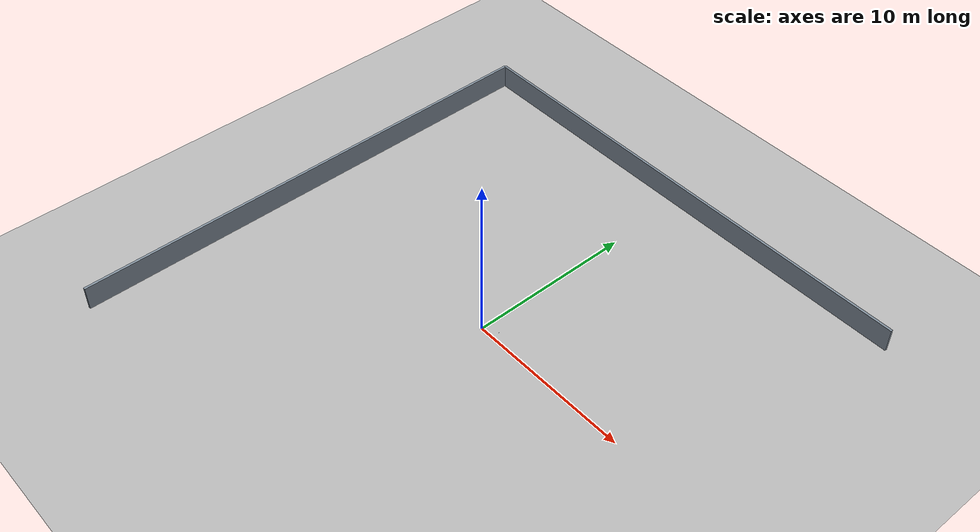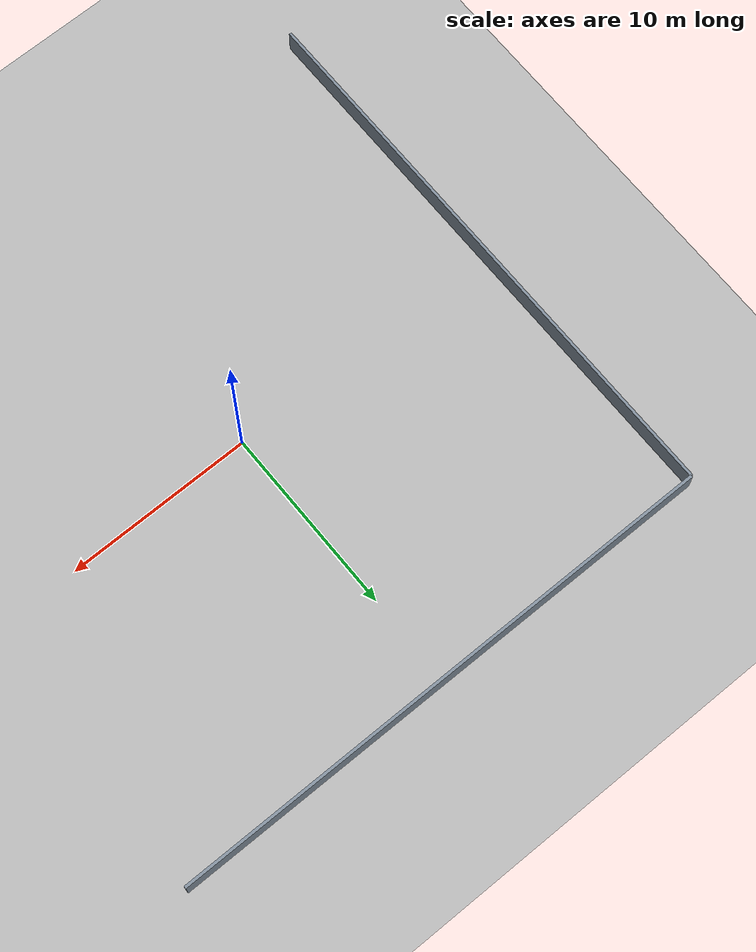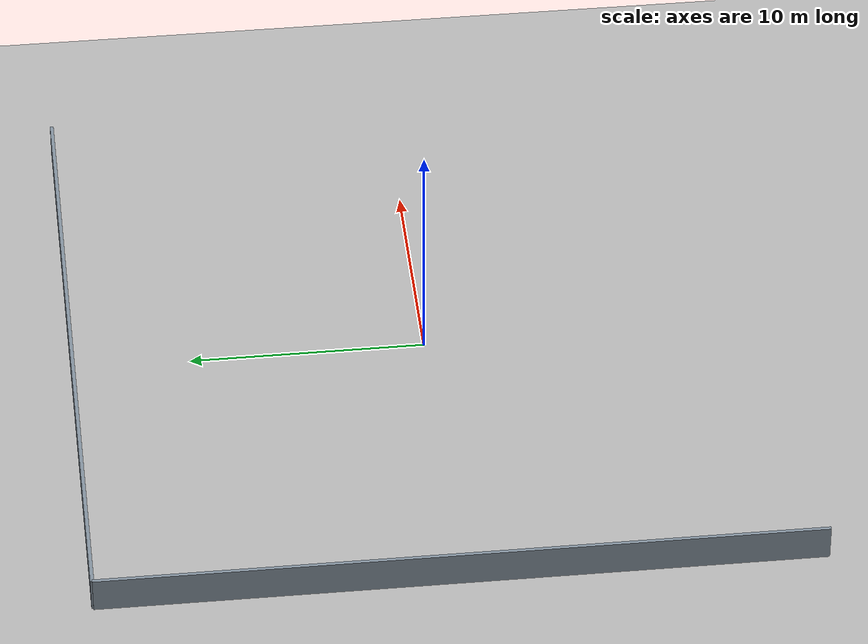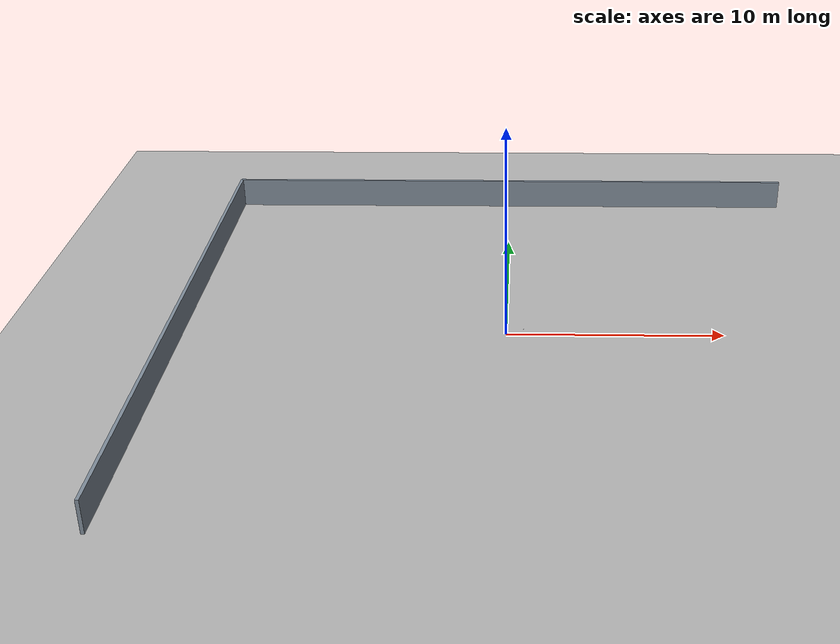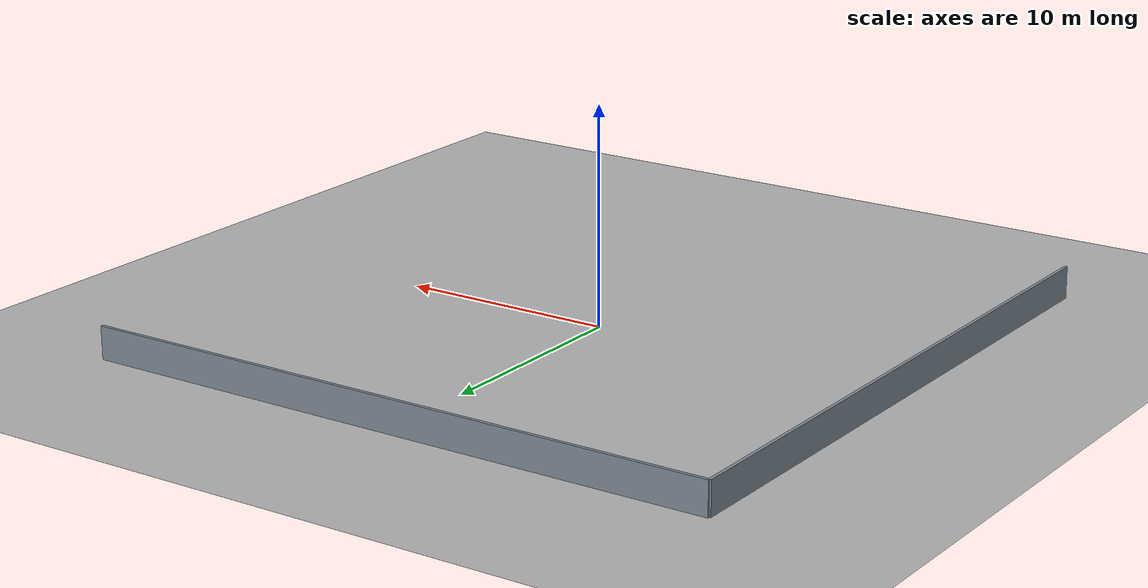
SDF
<sdf version="1.8">
 <world name="aruco_arena">
  <model name="aruco_floor_1">
   <static>true</static>
   <pose>0.8 0.5 0.001 0 0 0</pose>
   <link name="tag">
    <visual name="white_margin">
     <geometry><plane><normal>0 0 1</normal><size>0.0266666667 0.0266666667</size></plane></geometry>
     <cast_shadows>false</cast_shadows>
     <material><ambient>1 1 1 1</ambient><diffuse>1 1 1 1</diffuse><specular>0 0 0 1</specular></material>
    </visual>
    <visual name="black_0_0">
     <pose>-0.0083333333 0.0083333333 1e-05 0 0 0</pose>
     <geometry><plane><normal>0 0 1</normal><size>0.0033333333 0.0033333333</size></plane></geometry>
     <cast_shadows>false</cast_shadows>
     <material><ambient>0 0 0 1</ambient><diffuse>0 0 0 1</diffuse><specular>0 0 0 1</specular></material>
    </visual>
    <visual name="black_0_1">
     <pose>-0.0050000000 0.0083333333 1e-05 0 0 0</pose>
     <geometry><plane><normal>0 0 1</normal><size>0.0033333333 0.0033333333</size></plane></geometry>
     <cast_shadows>false</cast_shadows>
     <material><ambient>0 0 0 1</ambient><diffuse>0 0 0 1</diffuse><specular>0 0 0 1</specular></material>
    </visual>
    <visual name="black_0_2">
     <pose>-0.0016666667 0.0083333333 1e-05 0 0 0</pose>
     <geometry><plane><normal>0 0 1</normal><size>0.0033333333 0.0033333333</size></plane></geometry>
     <cast_shadows>false</cast_shadows>
     <material><ambient>0 0 0 1</ambient><diffuse>0 0 0 1</diffuse><specular>0 0 0 1</specular></material>
    </visual>
    <visual name="black_0_3">
     <pose>0.0016666667 0.0083333333 1e-05 0 0 0</pose>
     <geometry><plane><normal>0 0 1</normal><size>0.0033333333 0.0033333333</size></plane></geometry>
     <cast_shadows>false</cast_shadows>
     <material><ambient>0 0 0 1</ambient><diffuse>0 0 0 1</diffuse><specular>0 0 0 1</specular></material>
    </visual>
    <visual name="black_0_4">
     <pose>0.0050000000 0.0083333333 1e-05 0 0 0</pose>
     <geometry><plane><normal>0 0 1</normal><size>0.0033333333 0.0033333333</size></plane></geometry>
     <cast_shadows>false</cast_shadows>
     <material><ambient>0 0 0 1</ambient><diffuse>0 0 0 1</diffuse><specular>0 0 0 1</specular></material>
    </visual>
    <visual name="black_0_5">
     <pose>0.0083333333 0.0083333333 1e-05 0 0 0</pose>
     <geometry><plane><normal>0 0 1</normal><size>0.0033333333 0.0033333333</size></plane></geometry>
     <cast_shadows>false</cast_shadows>
     <material><ambient>0 0 0 1</ambient><diffuse>0 0 0 1</diffuse><specular>0 0 0 1</specular></material>
    </visual>
    <visual name="black_1_0">
     <pose>-0.0083333333 0.0050000000 1e-05 0 0 0</pose>
     <geometry><plane><normal>0 0 1</normal><size>0.0033333333 0.0033333333</size></plane></geometry>
     <cast_shadows>false</cast_shadows>
     <material><ambient>0 0 0 1</ambient><diffuse>0 0 0 1</diffuse><specular>0 0 0 1</specular></material>
    </visual>
    <visual name="black_1_1">
     <pose>-0.0050000000 0.0050000000 1e-05 0 0 0</pose>
     <geometry><plane><normal>0 0 1</normal><size>0.0033333333 0.0033333333</size></plane></geometry>
     <cast_shadows>false</cast_shadows>
     <material><ambient>0 0 0 1</ambient><diffuse>0 0 0 1</diffuse><specular>0 0 0 1</specular></material>
    </visual>
    <visual name="black_1_2">
     <pose>-0.0016666667 0.0050000000 1e-05 0 0 0</pose>
     <geometry><plane><normal>0 0 1</normal><size>0.0033333333 0.0033333333</size></plane></geometry>
     <cast_shadows>false</cast_shadows>
     <material><ambient>0 0 0 1</ambient><diffuse>0 0 0 1</diffuse><specular>0 0 0 1</specular></material>
    </visual>
    <visual name="black_1_3">
     <pose>0.0016666667 0.0050000000 1e-05 0 0 0</pose>
     <geometry><plane><normal>0 0 1</normal><size>0.0033333333 0.0033333333</size></plane></geometry>
     <cast_shadows>false</cast_shadows>
     <material><ambient>0 0 0 1</ambient><diffuse>0 0 0 1</diffuse><specular>0 0 0 1</specular></material>
    </visual>
    <visual name="black_1_4">
     <pose>0.0050000000 0.0050000000 1e-05 0 0 0</pose>
     <geometry><plane><normal>0 0 1</normal><size>0.0033333333 0.0033333333</size></plane></geometry>
     <cast_shadows>false</cast_shadows>
     <material><ambient>0 0 0 1</ambient><diffuse>0 0 0 1</diffuse><specular>0 0 0 1</specular></material>
    </visual>
    <visual name="black_1_5">
     <pose>0.0083333333 0.0050000000 1e-05 0 0 0</pose>
     <geometry><plane><normal>0 0 1</normal><size>0.0033333333 0.0033333333</size></plane></geometry>
     <cast_shadows>false</cast_shadows>
     <material><ambient>0 0 0 1</ambient><diffuse>0 0 0 1</diffuse><specular>0 0 0 1</specular></material>
    </visual>
    <visual name="black_2_0">
     <pose>-0.0083333333 0.0016666667 1e-05 0 0 0</pose>
     <geometry><plane><normal>0 0 1</normal><size>0.0033333333 0.0033333333</size></plane></geometry>
     <cast_shadows>false</cast_shadows>
     <material><ambient>0 0 0 1</ambient><diffuse>0 0 0 1</diffuse><specular>0 0 0 1</specular></material>
    </visual>
    <visual name="black_2_5">
     <pose>0.0083333333 0.0016666667 1e-05 0 0 0</pose>
     <geometry><plane><normal>0 0 1</normal><size>0.0033333333 0.0033333333</size></plane></geometry>
     <cast_shadows>false</cast_shadows>
     <material><ambient>0 0 0 1</ambient><diffuse>0 0 0 1</diffuse><specular>0 0 0 1</specular></material>
    </visual>
    <visual name="black_3_0">
     <pose>-0.0083333333 -0.0016666667 1e-05 0 0 0</pose>
     <geometry><plane><normal>0 0 1</normal><size>0.0033333333 0.0033333333</size></plane></geometry>
     <cast_shadows>false</cast_shadows>
     <material><ambient>0 0 0 1</ambient><diffuse>0 0 0 1</diffuse><specular>0 0 0 1</specular></material>
    </visual>
    <visual name="black_3_2">
     <pose>-0.0016666667 -0.0016666667 1e-05 0 0 0</pose>
     <geometry><plane><normal>0 0 1</normal><size>0.0033333333 0.0033333333</size></plane></geometry>
     <cast_shadows>false</cast_shadows>
     <material><ambient>0 0 0 1</ambient><diffuse>0 0 0 1</diffuse><specular>0 0 0 1</specular></material>
    </visual>
    <visual name="black_3_3">
     <pose>0.0016666667 -0.0016666667 1e-05 0 0 0</pose>
     <geometry><plane><normal>0 0 1</normal><size>0.0033333333 0.0033333333</size></plane></geometry>
     <cast_shadows>false</cast_shadows>
     <material><ambient>0 0 0 1</ambient><diffuse>0 0 0 1</diffuse><specular>0 0 0 1</specular></material>
    </visual>
    <visual name="black_3_5">
     <pose>0.0083333333 -0.0016666667 1e-05 0 0 0</pose>
     <geometry><plane><normal>0 0 1</normal><size>0.0033333333 0.0033333333</size></plane></geometry>
     <cast_shadows>false</cast_shadows>
     <material><ambient>0 0 0 1</ambient><diffuse>0 0 0 1</diffuse><specular>0 0 0 1</specular></material>
    </visual>
    <visual name="black_4_0">
     <pose>-0.0083333333 -0.0050000000 1e-05 0 0 0</pose>
     <geometry><plane><normal>0 0 1</normal><size>0.0033333333 0.0033333333</size></plane></geometry>
     <cast_shadows>false</cast_shadows>
     <material><ambient>0 0 0 1</ambient><diffuse>0 0 0 1</diffuse><specular>0 0 0 1</specular></material>
    </visual>
    <visual name="black_4_2">
     <pose>-0.0016666667 -0.0050000000 1e-05 0 0 0</pose>
     <geometry><plane><normal>0 0 1</normal><size>0.0033333333 0.0033333333</size></plane></geometry>
     <cast_shadows>false</cast_shadows>
     <material><ambient>0 0 0 1</ambient><diffuse>0 0 0 1</diffuse><specular>0 0 0 1</specular></material>
    </visual>
    <visual name="black_4_4">
     <pose>0.0050000000 -0.0050000000 1e-05 0 0 0</pose>
     <geometry><plane><normal>0 0 1</normal><size>0.0033333333 0.0033333333</size></plane></geometry>
     <cast_shadows>false</cast_shadows>
     <material><ambient>0 0 0 1</ambient><diffuse>0 0 0 1</diffuse><specular>0 0 0 1</specular></material>
    </visual>
    <visual name="black_4_5">
     <pose>0.0083333333 -0.0050000000 1e-05 0 0 0</pose>
     <geometry><plane><normal>0 0 1</normal><size>0.0033333333 0.0033333333</size></plane></geometry>
     <cast_shadows>false</cast_shadows>
     <material><ambient>0 0 0 1</ambient><diffuse>0 0 0 1</diffuse><specular>0 0 0 1</specular></material>
    </visual>
    <visual name="black_5_0">
     <pose>-0.0083333333 -0.0083333333 1e-05 0 0 0</pose>
     <geometry><plane><normal>0 0 1</normal><size>0.0033333333 0.0033333333</size></plane></geometry>
     <cast_shadows>false</cast_shadows>
     <material><ambient>0 0 0 1</ambient><diffuse>0 0 0 1</diffuse><specular>0 0 0 1</specular></material>
    </visual>
    <visual name="black_5_1">
     <pose>-0.0050000000 -0.0083333333 1e-05 0 0 0</pose>
     <geometry><plane><normal>0 0 1</normal><size>0.0033333333 0.0033333333</size></plane></geometry>
     <cast_shadows>false</cast_shadows>
     <material><ambient>0 0 0 1</ambient><diffuse>0 0 0 1</diffuse><specular>0 0 0 1</specular></material>
    </visual>
    <visual name="black_5_2">
     <pose>-0.0016666667 -0.0083333333 1e-05 0 0 0</pose>
     <geometry><plane><normal>0 0 1</normal><size>0.0033333333 0.0033333333</size></plane></geometry>
     <cast_shadows>false</cast_shadows>
     <material><ambient>0 0 0 1</ambient><diffuse>0 0 0 1</diffuse><specular>0 0 0 1</specular></material>
    </visual>
    <visual name="black_5_3">
     <pose>0.0016666667 -0.0083333333 1e-05 0 0 0</pose>
     <geometry><plane><normal>0 0 1</normal><size>0.0033333333 0.0033333333</size></plane></geometry>
     <cast_shadows>false</cast_shadows>
     <material><ambient>0 0 0 1</ambient><diffuse>0 0 0 1</diffuse><specular>0 0 0 1</specular></material>
    </visual>
    <visual name="black_5_4">
     <pose>0.0050000000 -0.0083333333 1e-05 0 0 0</pose>
     <geometry><plane><normal>0 0 1</normal><size>0.0033333333 0.0033333333</size></plane></geometry>
     <cast_shadows>false</cast_shadows>
     <material><ambient>0 0 0 1</ambient><diffuse>0 0 0 1</diffuse><specular>0 0 0 1</specular></material>
    </visual>
    <visual name="black_5_5">
     <pose>0.0083333333 -0.0083333333 1e-05 0 0 0</pose>
     <geometry><plane><normal>0 0 1</normal><size>0.0033333333 0.0033333333</size></plane></geometry>
     <cast_shadows>false</cast_shadows>
     <material><ambient>0 0 0 1</ambient><diffuse>0 0 0 1</diffuse><specular>0 0 0 1</specular></material>
    </visual>
   </link>
  </model>
  <model name="ground_plane">
   <static>true</static>
   <link name="ground">
    <collision name="collision">
     <geometry><plane><normal>0 0 1</normal><size>100 100</size></plane></geometry>
    </collision>
    <visual name="visual">
     <geometry><plane><normal>0 0 1</normal><size>100 100</size></plane></geometry>
     <material><ambient>0.7 0.7 0.7 1</ambient><diffuse>0.7 0.7 0.7 1</diffuse></material>
    </visual>
   </link>
  </model>
  <model name="north_wall">
   <static>true</static>
   <pose>0 15 0.75 0 0 0</pose>
   <link name="body">
    <collision name="collision"><geometry><box><size>30 0.15 1.5</size></box></geometry></collision>
    <visual name="visual">
     <geometry><box><size>30 0.15 1.5</size></box></geometry>
     <material><ambient>0.5 0.55 0.6 1</ambient><diffuse>0.5 0.55 0.6 1</diffuse></material>
    </visual>
   </link>
  </model>
  <model name="west_wall">
   <static>true</static>
   <pose>-15 0 0.75 0 0 0</pose>
   <link name="body">
    <collision name="collision"><geometry><box><size>0.15 30 1.5</size></box></geometry></collision>
    <visual name="visual">
     <geometry><box><size>0.15 30 1.5</size></box></geometry>
     <material><ambient>0.5 0.55 0.6 1</ambient><diffuse>0.5 0.55 0.6 1</diffuse></material>
    </visual>
   </link>
  </model>
 </world>
</sdf>
